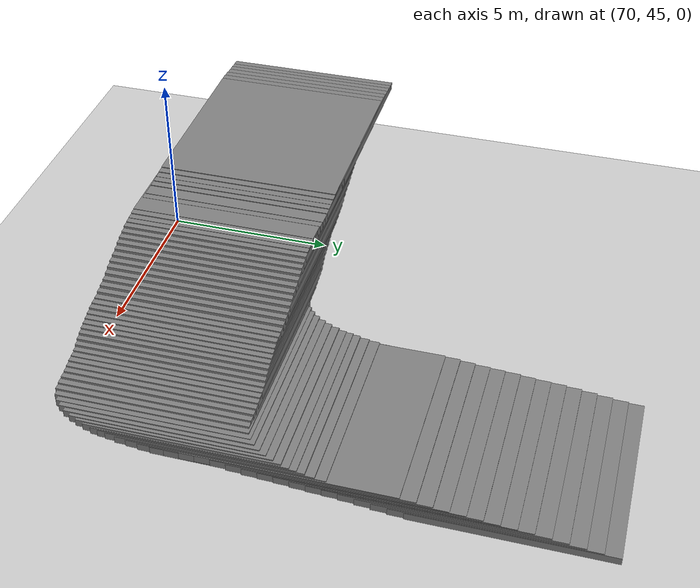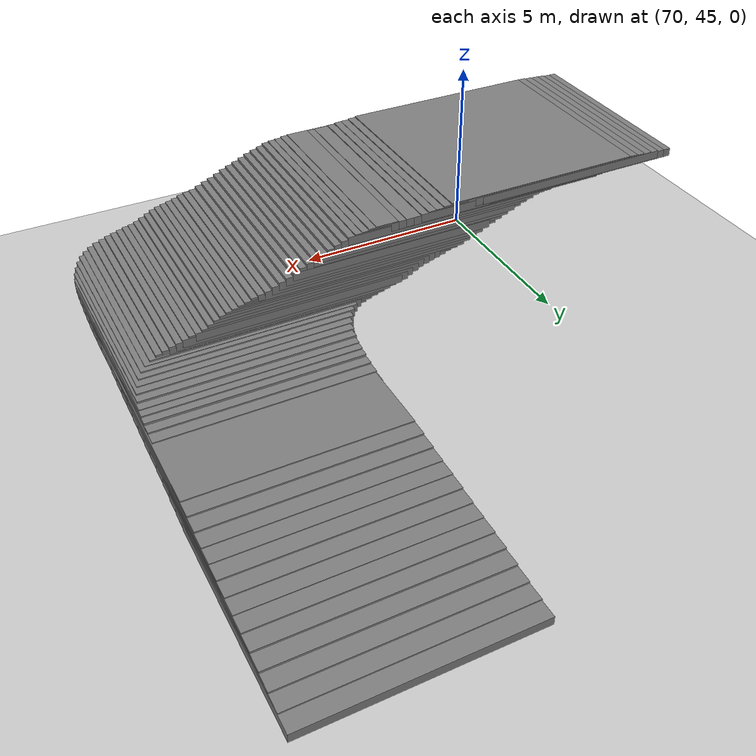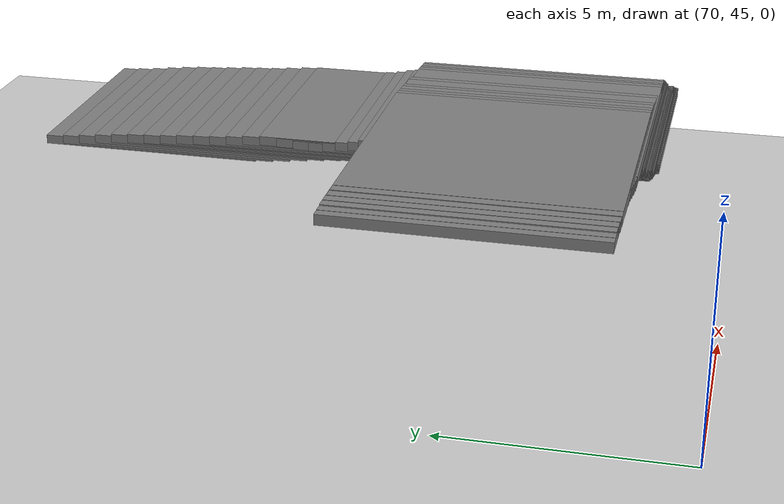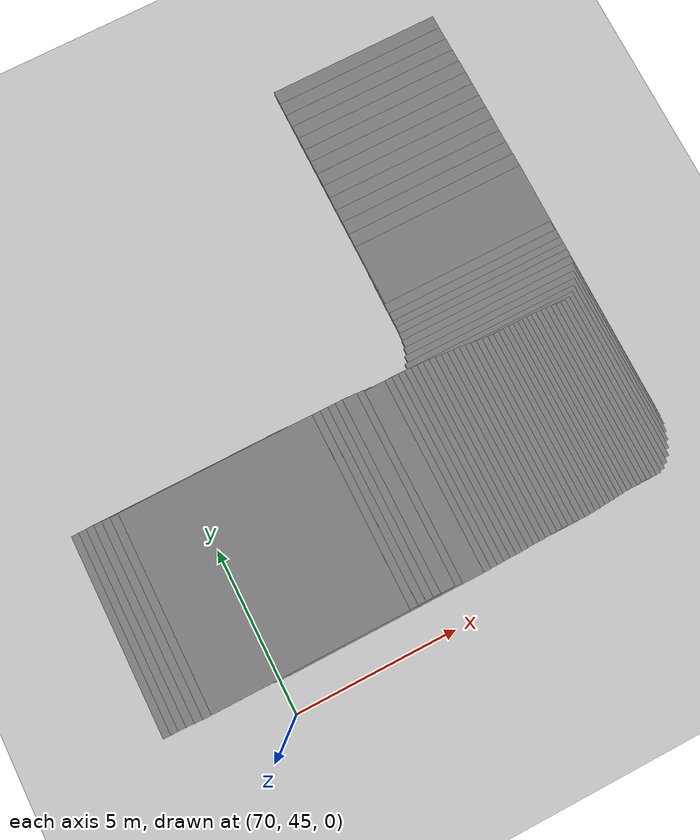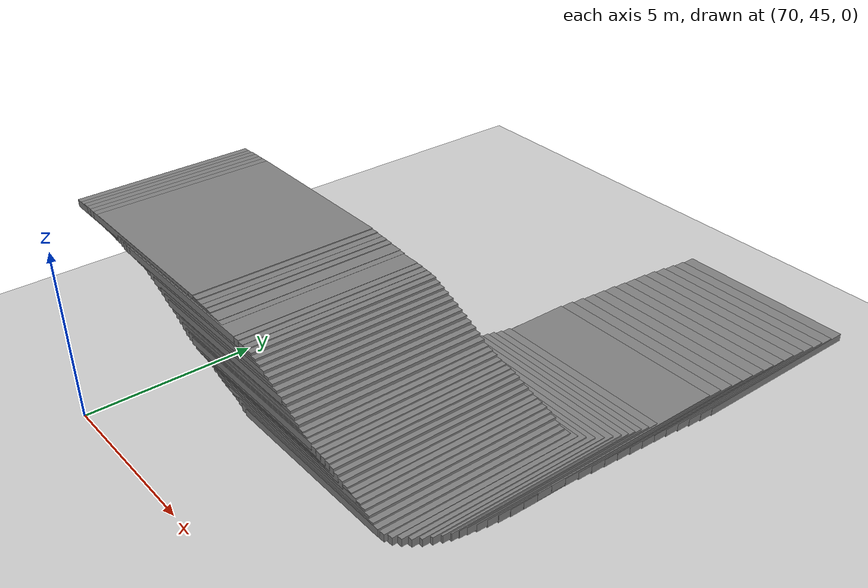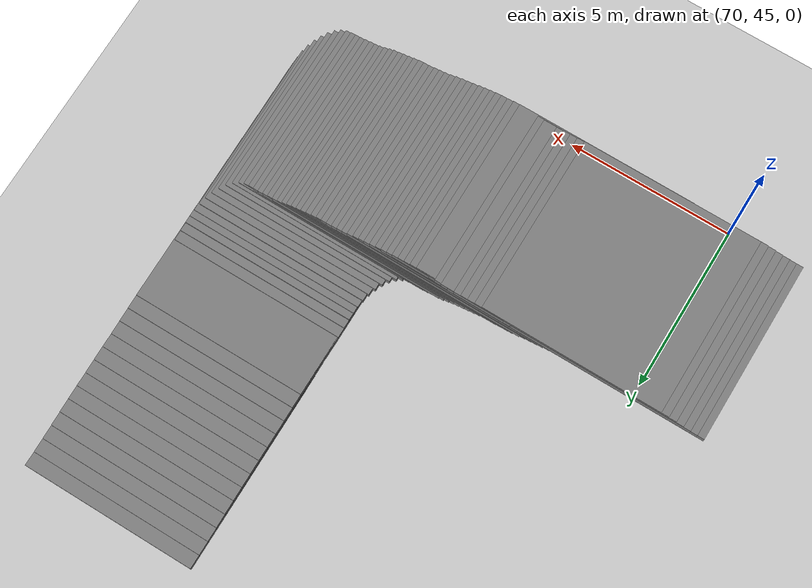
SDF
<sdf version="1.6">
 <world name="default">
  <include><uri>model://sun</uri></include>
  <include><uri>model://ground_plane</uri></include>
  <model name="road_segment_242">
   <static>true</static>
   <link name="link">
    <visual name="visual">
     <geometry><box><size>5.0 5.0 0.2</size></box></geometry>
     <material><ambient>0.5 0.5 0.5 1</ambient><diffuse>0.5 0.5 0.5 1</diffuse></material>
     <pose>79.74093561875881 58.00849881506661 2.318657547667571 0 0 0</pose>
    </visual>
    <collision name="collision">
     <geometry><box><size>5.0 5.0 0.2</size></box></geometry>
     <pose>79.74093561875881 58.00849881506661 2.318657547667571 0 0 0</pose>
    </collision>
   </link>
  </model>
  <model name="road_segment_243">
   <static>true</static>
   <link name="link">
    <visual name="visual">
     <geometry><box><size>5.0 5.0 0.2</size></box></geometry>
     <material><ambient>0.5 0.5 0.5 1</ambient><diffuse>0.5 0.5 0.5 1</diffuse></material>
     <pose>79.7358807040093 57.61032115714689 2.348357556709728 0 0 0</pose>
    </visual>
    <collision name="collision">
     <geometry><box><size>5.0 5.0 0.2</size></box></geometry>
     <pose>79.7358807040093 57.61032115714689 2.348357556709728 0 0 0</pose>
    </collision>
   </link>
  </model>
  <model name="road_segment_244">
   <static>true</static>
   <link name="link">
    <visual name="visual">
     <geometry><box><size>5.0 5.0 0.2</size></box></geometry>
     <material><ambient>0.5 0.5 0.5 1</ambient><diffuse>0.5 0.5 0.5 1</diffuse></material>
     <pose>79.73231928679421 57.213982185175695 2.387387879733346 0 0 0</pose>
    </visual>
    <collision name="collision">
     <geometry><box><size>5.0 5.0 0.2</size></box></geometry>
     <pose>79.73231928679421 57.213982185175695 2.387387879733346 0 0 0</pose>
    </collision>
   </link>
  </model>
  <model name="road_segment_245">
   <static>true</static>
   <link name="link">
    <visual name="visual">
     <geometry><box><size>5.0 5.0 0.2</size></box></geometry>
     <material><ambient>0.5 0.5 0.5 1</ambient><diffuse>0.5 0.5 0.5 1</diffuse></material>
     <pose>79.73048113596877 56.81968619759458 2.4352715677809056 0 0 0</pose>
    </visual>
    <collision name="collision">
     <geometry><box><size>5.0 5.0 0.2</size></box></geometry>
     <pose>79.73048113596877 56.81968619759458 2.4352715677809056 0 0 0</pose>
    </collision>
   </link>
  </model>
  <model name="road_segment_246">
   <static>true</static>
   <link name="link">
    <visual name="visual">
     <geometry><box><size>5.0 5.0 0.2</size></box></geometry>
     <material><ambient>0.5 0.5 0.5 1</ambient><diffuse>0.5 0.5 0.5 1</diffuse></material>
     <pose>79.72829833186869 56.42620740377238 2.479826549562449 0 0 0</pose>
    </visual>
    <collision name="collision">
     <geometry><box><size>5.0 5.0 0.2</size></box></geometry>
     <pose>79.72829833186869 56.42620740377238 2.479826549562449 0 0 0</pose>
    </collision>
   </link>
  </model>
  <model name="road_segment_247">
   <static>true</static>
   <link name="link">
    <visual name="visual">
     <geometry><box><size>5.0 5.0 0.2</size></box></geometry>
     <material><ambient>0.5 0.5 0.5 1</ambient><diffuse>0.5 0.5 0.5 1</diffuse></material>
     <pose>79.72611552776858 56.03334150526757 2.513163294405687 0 0 0</pose>
    </visual>
    <collision name="collision">
     <geometry><box><size>5.0 5.0 0.2</size></box></geometry>
     <pose>79.72611552776858 56.03334150526757 2.513163294405687 0 0 0</pose>
    </collision>
   </link>
  </model>
  <model name="road_segment_248">
   <static>true</static>
   <link name="link">
    <visual name="visual">
     <geometry><box><size>5.0 5.0 0.2</size></box></geometry>
     <material><ambient>0.5 0.5 0.5 1</ambient><diffuse>0.5 0.5 0.5 1</diffuse></material>
     <pose>79.72450714579838 55.64088420364223 2.5327877567202606 0 0 0</pose>
    </visual>
    <collision name="collision">
     <geometry><box><size>5.0 5.0 0.2</size></box></geometry>
     <pose>79.72450714579838 55.64088420364223 2.5327877567202606 0 0 0</pose>
    </collision>
   </link>
  </model>
  <model name="road_segment_249">
   <static>true</static>
   <link name="link">
    <visual name="visual">
     <geometry><box><size>5.0 5.0 0.2</size></box></geometry>
     <material><ambient>0.5 0.5 0.5 1</ambient><diffuse>0.5 0.5 0.5 1</diffuse></material>
     <pose>79.72209457284306 55.24801830513742 2.5610171731434015 0 0 0</pose>
    </visual>
    <collision name="collision">
     <geometry><box><size>5.0 5.0 0.2</size></box></geometry>
     <pose>79.72209457284306 55.24801830513742 2.5610171731434015 0 0 0</pose>
    </collision>
   </link>
  </model>
  <model name="road_segment_250">
   <static>true</static>
   <link name="link">
    <visual name="visual">
     <geometry><box><size>5.0 5.0 0.2</size></box></geometry>
     <material><ambient>0.5 0.5 0.5 1</ambient><diffuse>0.5 0.5 0.5 1</diffuse></material>
     <pose>79.71761408022343 54.85535670507416 2.595715209802891 0 0 0</pose>
    </visual>
    <collision name="collision">
     <geometry><box><size>5.0 5.0 0.2</size></box></geometry>
     <pose>79.71761408022343 54.85535670507416 2.595715209802891 0 0 0</pose>
    </collision>
   </link>
  </model>
  <model name="road_segment_251">
   <static>true</static>
   <link name="link">
    <visual name="visual">
     <geometry><box><size>5.0 5.0 0.2</size></box></geometry>
     <material><ambient>0.5 0.5 0.5 1</ambient><diffuse>0.5 0.5 0.5 1</diffuse></material>
     <pose>79.71324847202322 54.461265015934586 2.616681091060486 0 0 0</pose>
    </visual>
    <collision name="collision">
     <geometry><box><size>5.0 5.0 0.2</size></box></geometry>
     <pose>79.71324847202322 54.461265015934586 2.616681091060486 0 0 0</pose>
    </collision>
   </link>
  </model>
  <model name="road_segment_252">
   <static>true</static>
   <link name="link">
    <visual name="visual">
     <geometry><box><size>5.0 5.0 0.2</size></box></geometry>
     <material><ambient>0.5 0.5 0.5 1</ambient><diffuse>0.5 0.5 0.5 1</diffuse></material>
     <pose>79.71014659251858 54.0686034158677 2.639276547922937 0 0 0</pose>
    </visual>
    <collision name="collision">
     <geometry><box><size>5.0 5.0 0.2</size></box></geometry>
     <pose>79.71014659251858 54.0686034158677 2.639276547922937 0 0 0</pose>
    </collision>
   </link>
  </model>
  <model name="road_segment_253">
   <static>true</static>
   <link name="link">
    <visual name="visual">
     <geometry><box><size>5.0 5.0 0.2</size></box></geometry>
     <material><ambient>0.5 0.5 0.5 1</ambient><diffuse>0.5 0.5 0.5 1</diffuse></material>
     <pose>79.70647029088406 53.68023208302612 2.67635932937002 0 0 0</pose>
    </visual>
    <collision name="collision">
     <geometry><box><size>5.0 5.0 0.2</size></box></geometry>
     <pose>79.70647029088406 53.68023208302612 2.67635932937002 0 0 0</pose>
    </collision>
   </link>
  </model>
  <model name="road_segment_254">
   <static>true</static>
   <link name="link">
    <visual name="visual">
     <geometry><box><size>5.0 5.0 0.2</size></box></geometry>
     <material><ambient>0.5 0.5 0.5 1</ambient><diffuse>0.5 0.5 0.5 1</diffuse></material>
     <pose>79.70290887366897 53.28940916891501 2.71653234260436 0 0 0</pose>
    </visual>
    <collision name="collision">
     <geometry><box><size>5.0 5.0 0.2</size></box></geometry>
     <pose>79.70290887366897 53.28940916891501 2.71653234260436 0 0 0</pose>
    </collision>
   </link>
  </model>
  <model name="road_segment_255">
   <static>true</static>
   <link name="link">
    <visual name="visual">
     <geometry><box><size>5.0 5.0 0.2</size></box></geometry>
     <material><ambient>0.5 0.5 0.5 1</ambient><diffuse>0.5 0.5 0.5 1</diffuse></material>
     <pose>79.70049630071367 52.895113181337514 2.743658814563239 0 0 0</pose>
    </visual>
    <collision name="collision">
     <geometry><box><size>5.0 5.0 0.2</size></box></geometry>
     <pose>79.70049630071367 52.895113181337514 2.743658814563239 0 0 0</pose>
    </collision>
   </link>
  </model>
  <model name="road_segment_256">
   <static>true</static>
   <link name="link">
    <visual name="visual">
     <geometry><box><size>5.0 5.0 0.2</size></box></geometry>
     <material><ambient>0.5 0.5 0.5 1</ambient><diffuse>0.5 0.5 0.5 1</diffuse></material>
     <pose>79.697394421209 52.50286017815009 2.7332354925541313 0 0 0</pose>
    </visual>
    <collision name="collision">
     <geometry><box><size>5.0 5.0 0.2</size></box></geometry>
     <pose>79.697394421209 52.50286017815009 2.7332354925541313 0 0 0</pose>
    </collision>
   </link>
  </model>
  <model name="road_segment_257">
   <static>true</static>
   <link name="link">
    <visual name="visual">
     <geometry><box><size>5.0 5.0 0.2</size></box></geometry>
     <material><ambient>0.5 0.5 0.5 1</ambient><diffuse>0.5 0.5 0.5 1</diffuse></material>
     <pose>79.6917650843296 52.120004903164975 2.7108785101704393 0 0 0</pose>
    </visual>
    <collision name="collision">
     <geometry><box><size>5.0 5.0 0.2</size></box></geometry>
     <pose>79.6917650843296 52.120004903164975 2.7108785101704393 0 0 0</pose>
    </collision>
   </link>
  </model>
  <model name="road_segment_258">
   <static>true</static>
   <link name="link">
    <visual name="visual">
     <geometry><box><size>5.0 5.0 0.2</size></box></geometry>
     <material><ambient>0.5 0.5 0.5 1</ambient><diffuse>0.5 0.5 0.5 1</diffuse></material>
     <pose>79.68498690317409 51.76248263463414 2.707241774369359 0 0 0</pose>
    </visual>
    <collision name="collision">
     <geometry><box><size>5.0 5.0 0.2</size></box></geometry>
     <pose>79.68498690317409 51.76248263463414 2.707241774369359 0 0 0</pose>
    </collision>
   </link>
  </model>
  <model name="road_segment_259">
   <static>true</static>
   <link name="link">
    <visual name="visual">
     <geometry><box><size>5.0 5.0 0.2</size></box></geometry>
     <material><ambient>0.5 0.5 0.5 1</ambient><diffuse>0.5 0.5 0.5 1</diffuse></material>
     <pose>79.67866825972902 51.441325488274146 2.7294000280207515 0 0 0</pose>
    </visual>
    <collision name="collision">
     <geometry><box><size>5.0 5.0 0.2</size></box></geometry>
     <pose>79.67866825972902 51.441325488274146 2.7294000280207515 0 0 0</pose>
    </collision>
   </link>
  </model>
  <model name="road_segment_260">
   <static>true</static>
   <link name="link">
    <visual name="visual">
     <geometry><box><size>5.0 5.0 0.2</size></box></geometry>
     <material><ambient>0.5 0.5 0.5 1</ambient><diffuse>0.5 0.5 0.5 1</diffuse></material>
     <pose>79.6746473048035 51.143866960857835 2.769602850564936 0 0 0</pose>
    </visual>
    <collision name="collision">
     <geometry><box><size>5.0 5.0 0.2</size></box></geometry>
     <pose>79.6746473048035 51.143866960857835 2.769602850564936 0 0 0</pose>
    </collision>
   </link>
  </model>
  <model name="road_segment_261">
   <static>true</static>
   <link name="link">
    <visual name="visual">
     <geometry><box><size>5.0 5.0 0.2</size></box></geometry>
     <material><ambient>0.5 0.5 0.5 1</ambient><diffuse>0.5 0.5 0.5 1</diffuse></material>
     <pose>79.67234961626764 50.86499959140458 2.8075401655609067 0 0 0</pose>
    </visual>
    <collision name="collision">
     <geometry><box><size>5.0 5.0 0.2</size></box></geometry>
     <pose>79.67234961626764 50.86499959140458 2.8075401655609067 0 0 0</pose>
    </collision>
   </link>
  </model>
  <model name="road_segment_262">
   <static>true</static>
   <link name="link">
    <visual name="visual">
     <geometry><box><size>5.0 5.0 0.2</size></box></geometry>
     <material><ambient>0.5 0.5 0.5 1</ambient><diffuse>0.5 0.5 0.5 1</diffuse></material>
     <pose>79.66821377692267 50.62433603007432 2.863343193590601 0 0 0</pose>
    </visual>
    <collision name="collision">
     <geometry><box><size>5.0 5.0 0.2</size></box></geometry>
     <pose>79.66821377692267 50.62433603007432 2.863343193590601 0 0 0</pose>
    </collision>
   </link>
  </model>
  <model name="road_segment_263">
   <static>true</static>
   <link name="link">
    <visual name="visual">
     <geometry><box><size>5.0 5.0 0.2</size></box></geometry>
     <material><ambient>0.5 0.5 0.5 1</ambient><diffuse>0.5 0.5 0.5 1</diffuse></material>
     <pose>79.66074628921783 50.426166544088716 2.89448398594193 0 0 0</pose>
    </visual>
    <collision name="collision">
     <geometry><box><size>5.0 5.0 0.2</size></box></geometry>
     <pose>79.66074628921783 50.426166544088716 2.89448398594193 0 0 0</pose>
    </collision>
   </link>
  </model>
  <model name="road_segment_264">
   <static>true</static>
   <link name="link">
    <visual name="visual">
     <geometry><box><size>5.0 5.0 0.2</size></box></geometry>
     <material><ambient>0.5 0.5 0.5 1</ambient><diffuse>0.5 0.5 0.5 1</diffuse></material>
     <pose>79.6470750425037 50.23821198006073 2.917675629001279 0 0 0</pose>
    </visual>
    <collision name="collision">
     <geometry><box><size>5.0 5.0 0.2</size></box></geometry>
     <pose>79.6470750425037 50.23821198006073 2.917675629001279 0 0 0</pose>
    </collision>
   </link>
  </model>
  <model name="road_segment_265">
   <static>true</static>
   <link name="link">
    <visual name="visual">
     <geometry><box><size>5.0 5.0 0.2</size></box></geometry>
     <material><ambient>0.5 0.5 0.5 1</ambient><diffuse>0.5 0.5 0.5 1</diffuse></material>
     <pose>79.61915812692922 50.03656942060875 2.9664237870343415 0 0 0</pose>
    </visual>
    <collision name="collision">
     <geometry><box><size>5.0 5.0 0.2</size></box></geometry>
     <pose>79.61915812692922 50.03656942060875 2.9664237870343415 0 0 0</pose>
    </collision>
   </link>
  </model>
  <model name="road_segment_266">
   <static>true</static>
   <link name="link">
    <visual name="visual">
     <geometry><box><size>5.0 5.0 0.2</size></box></geometry>
     <material><ambient>0.5 0.5 0.5 1</ambient><diffuse>0.5 0.5 0.5 1</diffuse></material>
     <pose>79.56711548181794 49.83084089237663 3.001062205074141 0 0 0</pose>
    </visual>
    <collision name="collision">
     <geometry><box><size>5.0 5.0 0.2</size></box></geometry>
     <pose>79.56711548181794 49.83084089237663 3.001062205074141 0 0 0</pose>
    </collision>
   </link>
  </model>
  <model name="road_segment_267">
   <static>true</static>
   <link name="link">
    <visual name="visual">
     <geometry><box><size>5.0 5.0 0.2</size></box></geometry>
     <material><ambient>0.5 0.5 0.5 1</ambient><diffuse>0.5 0.5 0.5 1</diffuse></material>
     <pose>79.49221083588169 49.632671406391026 3.0229223656270836 0 0 0</pose>
    </visual>
    <collision name="collision">
     <geometry><box><size>5.0 5.0 0.2</size></box></geometry>
     <pose>79.49221083588169 49.632671406391026 3.0229223656270836 0 0 0</pose>
    </collision>
   </link>
  </model>
  <model name="road_segment_268">
   <static>true</static>
   <link name="link">
    <visual name="visual">
     <geometry><box><size>5.0 5.0 0.2</size></box></geometry>
     <material><ambient>0.5 0.5 0.5 1</ambient><diffuse>0.5 0.5 0.5 1</diffuse></material>
     <pose>79.40007352601623 49.447168423632576 3.052155362148337 0 0 0</pose>
    </visual>
    <collision name="collision">
     <geometry><box><size>5.0 5.0 0.2</size></box></geometry>
     <pose>79.40007352601623 49.447168423632576 3.052155362148337 0 0 0</pose>
    </collision>
   </link>
  </model>
  <model name="road_segment_269">
   <static>true</static>
   <link name="link">
    <visual name="visual">
     <geometry><box><size>5.0 5.0 0.2</size></box></geometry>
     <material><ambient>0.5 0.5 0.5 1</ambient><diffuse>0.5 0.5 0.5 1</diffuse></material>
     <pose>79.28943982352601 49.28229958323089 3.085720645033719 0 0 0</pose>
    </visual>
    <collision name="collision">
     <geometry><box><size>5.0 5.0 0.2</size></box></geometry>
     <pose>79.28943982352601 49.28229958323089 3.085720645033719 0 0 0</pose>
    </collision>
   </link>
  </model>
  <model name="road_segment_270">
   <static>true</static>
   <link name="link">
    <visual name="visual">
     <geometry><box><size>5.0 5.0 0.2</size></box></geometry>
     <material><ambient>0.5 0.5 0.5 1</ambient><diffuse>0.5 0.5 0.5 1</diffuse></material>
     <pose>79.16088415054092 49.14991419465418 3.101509642814913 0 0 0</pose>
    </visual>
    <collision name="collision">
     <geometry><box><size>5.0 5.0 0.2</size></box></geometry>
     <pose>79.16088415054092 49.14991419465418 3.101509642814913 0 0 0</pose>
    </collision>
   </link>
  </model>
  <model name="road_segment_271">
   <static>true</static>
   <link name="link">
    <visual name="visual">
     <geometry><box><size>5.0 5.0 0.2</size></box></geometry>
     <material><ambient>0.5 0.5 0.5 1</ambient><diffuse>0.5 0.5 0.5 1</diffuse></material>
     <pose>79.02003584394036 49.060022881425766 3.1392681019518145 0 0 0</pose>
    </visual>
    <collision name="collision">
     <geometry><box><size>5.0 5.0 0.2</size></box></geometry>
     <pose>79.02003584394036 49.060022881425766 3.1392681019518145 0 0 0</pose>
    </collision>
   </link>
  </model>
  <model name="road_segment_272">
   <static>true</static>
   <link name="link">
    <visual name="visual">
     <geometry><box><size>5.0 5.0 0.2</size></box></geometry>
     <material><ambient>0.5 0.5 0.5 1</ambient><diffuse>0.5 0.5 0.5 1</diffuse></material>
     <pose>78.87194981847387 49.01895889515379 3.193242825644353 0 0 0</pose>
    </visual>
    <collision name="collision">
     <geometry><box><size>5.0 5.0 0.2</size></box></geometry>
     <pose>78.87194981847387 49.01895889515379 3.193242825644353 0 0 0</pose>
    </collision>
   </link>
  </model>
  <model name="road_segment_273">
   <static>true</static>
   <link name="link">
    <visual name="visual">
     <geometry><box><size>5.0 5.0 0.2</size></box></geometry>
     <material><ambient>0.5 0.5 0.5 1</ambient><diffuse>0.5 0.5 0.5 1</diffuse></material>
     <pose>78.71926841596827 49.01977608890908 3.244435347084699 0 0 0</pose>
    </visual>
    <collision name="collision">
     <geometry><box><size>5.0 5.0 0.2</size></box></geometry>
     <pose>78.71926841596827 49.01977608890908 3.244435347084699 0 0 0</pose>
    </collision>
   </link>
  </model>
  <model name="road_segment_274">
   <static>true</static>
   <link name="link">
    <visual name="visual">
     <geometry><box><size>5.0 5.0 0.2</size></box></geometry>
     <material><ambient>0.5 0.5 0.5 1</ambient><diffuse>0.5 0.5 0.5 1</diffuse></material>
     <pose>78.56428932494313 49.03693715779947 3.3102642396589017 0 0 0</pose>
    </visual>
    <collision name="collision">
     <geometry><box><size>5.0 5.0 0.2</size></box></geometry>
     <pose>78.56428932494313 49.03693715779947 3.3102642396589017 0 0 0</pose>
    </collision>
   </link>
  </model>
  <model name="road_segment_275">
   <static>true</static>
   <link name="link">
    <visual name="visual">
     <geometry><box><size>5.0 5.0 0.2</size></box></geometry>
     <material><ambient>0.5 0.5 0.5 1</ambient><diffuse>0.5 0.5 0.5 1</diffuse></material>
     <pose>78.41229722898689 49.049399362588694 3.36259945130997 0 0 0</pose>
    </visual>
    <collision name="collision">
     <geometry><box><size>5.0 5.0 0.2</size></box></geometry>
     <pose>78.41229722898689 49.049399362588694 3.36259945130997 0 0 0</pose>
    </collision>
   </link>
  </model>
  <model name="road_segment_276">
   <static>true</static>
   <link name="link">
    <visual name="visual">
     <geometry><box><size>5.0 5.0 0.2</size></box></geometry>
     <material><ambient>0.5 0.5 0.5 1</ambient><diffuse>0.5 0.5 0.5 1</diffuse></material>
     <pose>78.26191351500086 49.04960366102661 3.4070153229789044 0 0 0</pose>
    </visual>
    <collision name="collision">
     <geometry><box><size>5.0 5.0 0.2</size></box></geometry>
     <pose>78.26191351500086 49.04960366102661 3.4070153229789044 0 0 0</pose>
    </collision>
   </link>
  </model>
  <model name="road_segment_277">
   <static>true</static>
   <link name="link">
    <visual name="visual">
     <geometry><box><size>5.0 5.0 0.2</size></box></geometry>
     <material><ambient>0.5 0.5 0.5 1</ambient><diffuse>0.5 0.5 0.5 1</diffuse></material>
     <pose>78.11061072561026 49.04796927351238 3.4507455805214047 0 0 0</pose>
    </visual>
    <collision name="collision">
     <geometry><box><size>5.0 5.0 0.2</size></box></geometry>
     <pose>78.11061072561026 49.04796927351238 3.4507455805214047 0 0 0</pose>
    </collision>
   </link>
  </model>
  <model name="road_segment_278">
   <static>true</static>
   <link name="link">
    <visual name="visual">
     <geometry><box><size>5.0 5.0 0.2</size></box></geometry>
     <material><ambient>0.5 0.5 0.5 1</ambient><diffuse>0.5 0.5 0.5 1</diffuse></material>
     <pose>77.95965258949433 49.05164664542031 3.480415780253717 0 0 0</pose>
    </visual>
    <collision name="collision">
     <geometry><box><size>5.0 5.0 0.2</size></box></geometry>
     <pose>77.95965258949433 49.05164664542031 3.480415780253717 0 0 0</pose>
    </collision>
   </link>
  </model>
  <model name="road_segment_279">
   <static>true</static>
   <link name="link">
    <visual name="visual">
     <geometry><box><size>5.0 5.0 0.2</size></box></geometry>
     <material><ambient>0.5 0.5 0.5 1</ambient><diffuse>0.5 0.5 0.5 1</diffuse></material>
     <pose>77.81156656402783 49.04858216883339 3.527991438766213 0 0 0</pose>
    </visual>
    <collision name="collision">
     <geometry><box><size>5.0 5.0 0.2</size></box></geometry>
     <pose>77.81156656402783 49.04858216883339 3.527991438766213 0 0 0</pose>
    </collision>
   </link>
  </model>
  <model name="road_segment_280">
   <static>true</static>
   <link name="link">
    <visual name="visual">
     <geometry><box><size>5.0 5.0 0.2</size></box></geometry>
     <material><ambient>0.5 0.5 0.5 1</ambient><diffuse>0.5 0.5 0.5 1</diffuse></material>
     <pose>77.66727172463163 49.03775435155477 3.593671284791191 0 0 0</pose>
    </visual>
    <collision name="collision">
     <geometry><box><size>5.0 5.0 0.2</size></box></geometry>
     <pose>77.66727172463163 49.03775435155477 3.593671284791191 0 0 0</pose>
    </collision>
   </link>
  </model>
  <model name="road_segment_281">
   <static>true</static>
   <link name="link">
    <visual name="visual">
     <geometry><box><size>5.0 5.0 0.2</size></box></geometry>
     <material><ambient>0.5 0.5 0.5 1</ambient><diffuse>0.5 0.5 0.5 1</diffuse></material>
     <pose>77.52355130738164 49.03101250306355 3.663514497757843 0 0 0</pose>
    </visual>
    <collision name="collision">
     <geometry><box><size>5.0 5.0 0.2</size></box></geometry>
     <pose>77.52355130738164 49.03101250306355 3.663514497757843 0 0 0</pose>
    </collision>
   </link>
  </model>
  <model name="road_segment_282">
   <static>true</static>
   <link name="link">
    <visual name="visual">
     <geometry><box><size>5.0 5.0 0.2</size></box></geometry>
     <material><ambient>0.5 0.5 0.5 1</ambient><diffuse>0.5 0.5 0.5 1</diffuse></material>
     <pose>77.38029042782576 49.02856092179401 3.7335067572737204 0 0 0</pose>
    </visual>
    <collision name="collision">
     <geometry><box><size>5.0 5.0 0.2</size></box></geometry>
     <pose>77.38029042782576 49.02856092179401 3.7335067572737204 0 0 0</pose>
    </collision>
   </link>
  </model>
  <model name="road_segment_283">
   <static>true</static>
   <link name="link">
    <visual name="visual">
     <geometry><box><size>5.0 5.0 0.2</size></box></geometry>
     <material><ambient>0.5 0.5 0.5 1</ambient><diffuse>0.5 0.5 0.5 1</diffuse></material>
     <pose>77.23737420154455 49.025905042082925 3.780992987856681 0 0 0</pose>
    </visual>
    <collision name="collision">
     <geometry><box><size>5.0 5.0 0.2</size></box></geometry>
     <pose>77.23737420154455 49.025905042082925 3.780992987856681 0 0 0</pose>
    </collision>
   </link>
  </model>
  <model name="road_segment_284">
   <static>true</static>
   <link name="link">
    <visual name="visual">
     <geometry><box><size>5.0 5.0 0.2</size></box></geometry>
     <material><ambient>0.5 0.5 0.5 1</ambient><diffuse>0.5 0.5 0.5 1</diffuse></material>
     <pose>77.0913560957587 49.019980387347005 3.8170125705859617 0 0 0</pose>
    </visual>
    <collision name="collision">
     <geometry><box><size>5.0 5.0 0.2</size></box></geometry>
     <pose>77.0913560957587 49.019980387347005 3.8170125705859617 0 0 0</pose>
    </collision>
   </link>
  </model>
  <model name="road_segment_285">
   <static>true</static>
   <link name="link">
    <visual name="visual">
     <geometry><box><size>5.0 5.0 0.2</size></box></geometry>
     <material><ambient>0.5 0.5 0.5 1</ambient><diffuse>0.5 0.5 0.5 1</diffuse></material>
     <pose>76.94154680390253 49.011604151341544 3.8518695902312903 0 0 0</pose>
    </visual>
    <collision name="collision">
     <geometry><box><size>5.0 5.0 0.2</size></box></geometry>
     <pose>76.94154680390253 49.011604151341544 3.8518695902312903 0 0 0</pose>
    </collision>
   </link>
  </model>
  <model name="road_segment_286">
   <static>true</static>
   <link name="link">
    <visual name="visual">
     <geometry><box><size>5.0 5.0 0.2</size></box></geometry>
     <material><ambient>0.5 0.5 0.5 1</ambient><diffuse>0.5 0.5 0.5 1</diffuse></material>
     <pose>76.78852074812228 49.00384081065347 3.88820713893225 0 0 0</pose>
    </visual>
    <collision name="collision">
     <geometry><box><size>5.0 5.0 0.2</size></box></geometry>
     <pose>76.78852074812228 49.00384081065347 3.88820713893225 0 0 0</pose>
    </collision>
   </link>
  </model>
  <model name="road_segment_287">
   <static>true</static>
   <link name="link">
    <visual name="visual">
     <geometry><box><size>5.0 5.0 0.2</size></box></geometry>
     <material><ambient>0.5 0.5 0.5 1</ambient><diffuse>0.5 0.5 0.5 1</diffuse></material>
     <pose>76.63296723495094 49.003636512215564 3.946871860707057 0 0 0</pose>
    </visual>
    <collision name="collision">
     <geometry><box><size>5.0 5.0 0.2</size></box></geometry>
     <pose>76.63296723495094 49.003636512215564 3.946871860707057 0 0 0</pose>
    </collision>
   </link>
  </model>
  <model name="road_segment_288">
   <static>true</static>
   <link name="link">
    <visual name="visual">
     <geometry><box><size>5.0 5.0 0.2</size></box></geometry>
     <material><ambient>0.5 0.5 0.5 1</ambient><diffuse>0.5 0.5 0.5 1</diffuse></material>
     <pose>76.47626487751984 49.01160415134518 3.986339386941734 0 0 0</pose>
    </visual>
    <collision name="collision">
     <geometry><box><size>5.0 5.0 0.2</size></box></geometry>
     <pose>76.47626487751984 49.01160415134518 3.986339386941734 0 0 0</pose>
    </collision>
   </link>
  </model>
  <model name="road_segment_289">
   <static>true</static>
   <link name="link">
    <visual name="visual">
     <geometry><box><size>5.0 5.0 0.2</size></box></geometry>
     <material><ambient>0.5 0.5 0.5 1</ambient><diffuse>0.5 0.5 0.5 1</diffuse></material>
     <pose>76.31565644959896 49.01998038735063 4.023859371599876 0 0 0</pose>
    </visual>
    <collision name="collision">
     <geometry><box><size>5.0 5.0 0.2</size></box></geometry>
     <pose>76.31565644959896 49.01998038735063 4.023859371599876 0 0 0</pose>
    </collision>
   </link>
  </model>
  <model name="road_segment_290">
   <static>true</static>
   <link name="link">
    <visual name="visual">
     <geometry><box><size>5.0 5.0 0.2</size></box></geometry>
     <material><ambient>0.5 0.5 0.5 1</ambient><diffuse>0.5 0.5 0.5 1</diffuse></material>
     <pose>76.151486604463 49.02958241399086 4.101920017647112 0 0 0</pose>
    </visual>
    <collision name="collision">
     <geometry><box><size>5.0 5.0 0.2</size></box></geometry>
     <pose>76.151486604463 49.02958241399086 4.101920017647112 0 0 0</pose>
    </collision>
   </link>
  </model>
  <model name="road_segment_291">
   <static>true</static>
   <link name="link">
    <visual name="visual">
     <geometry><box><size>5.0 5.0 0.2</size></box></geometry>
     <material><ambient>0.5 0.5 0.5 1</ambient><diffuse>0.5 0.5 0.5 1</diffuse></material>
     <pose>75.98789118147327 49.04327040941486 4.179980663694348 0 0 0</pose>
    </visual>
    <collision name="collision">
     <geometry><box><size>5.0 5.0 0.2</size></box></geometry>
     <pose>75.98789118147327 49.04327040941486 4.179980663694348 0 0 0</pose>
    </collision>
   </link>
  </model>
  <model name="road_segment_292">
   <static>true</static>
   <link name="link">
    <visual name="visual">
     <geometry><box><size>5.0 5.0 0.2</size></box></geometry>
     <material><ambient>0.5 0.5 0.5 1</ambient><diffuse>0.5 0.5 0.5 1</diffuse></material>
     <pose>75.824065989612 49.054711122007234 4.251284532843401 0 0 0</pose>
    </visual>
    <collision name="collision">
     <geometry><box><size>5.0 5.0 0.2</size></box></geometry>
     <pose>75.824065989612 49.054711122007234 4.251284532843401 0 0 0</pose>
    </collision>
   </link>
  </model>
  <model name="road_segment_293">
   <static>true</static>
   <link name="link">
    <visual name="visual">
     <geometry><box><size>5.0 5.0 0.2</size></box></geometry>
     <material><ambient>0.5 0.5 0.5 1</ambient><diffuse>0.5 0.5 0.5 1</diffuse></material>
     <pose>75.65794310921484 49.05716270327677 4.332147254016059 0 0 0</pose>
    </visual>
    <collision name="collision">
     <geometry><box><size>5.0 5.0 0.2</size></box></geometry>
     <pose>75.65794310921484 49.05716270327677 4.332147254016059 0 0 0</pose>
    </collision>
   </link>
  </model>
  <model name="road_segment_294">
   <static>true</static>
   <link name="link">
    <visual name="visual">
     <geometry><box><size>5.0 5.0 0.2</size></box></geometry>
     <material><ambient>0.5 0.5 0.5 1</ambient><diffuse>0.5 0.5 0.5 1</diffuse></material>
     <pose>75.49124580670414 49.05389392825193 4.410664976147584 0 0 0</pose>
    </visual>
    <collision name="collision">
     <geometry><box><size>5.0 5.0 0.2</size></box></geometry>
     <pose>75.49124580670414 49.05389392825193 4.410664976147584 0 0 0</pose>
    </collision>
   </link>
  </model>
  <model name="road_segment_295">
   <static>true</static>
   <link name="link">
    <visual name="visual">
     <geometry><box><size>5.0 5.0 0.2</size></box></geometry>
     <material><ambient>0.5 0.5 0.5 1</ambient><diffuse>0.5 0.5 0.5 1</diffuse></material>
     <pose>75.32397408206353 49.05491542044878 4.479047532931835 0 0 0</pose>
    </visual>
    <collision name="collision">
     <geometry><box><size>5.0 5.0 0.2</size></box></geometry>
     <pose>75.32397408206353 49.05491542044878 4.479047532931835 0 0 0</pose>
    </collision>
   </link>
  </model>
  <model name="road_segment_296">
   <static>true</static>
   <link name="link">
    <visual name="visual">
     <geometry><box><size>5.0 5.0 0.2</size></box></geometry>
     <material><ambient>0.5 0.5 0.5 1</ambient><diffuse>0.5 0.5 0.5 1</diffuse></material>
     <pose>75.15509397545273 49.06288305957477 4.55337207881184 0 0 0</pose>
    </visual>
    <collision name="collision">
     <geometry><box><size>5.0 5.0 0.2</size></box></geometry>
     <pose>75.15509397545273 49.06288305957477 4.55337207881184 0 0 0</pose>
    </collision>
   </link>
  </model>
  <model name="road_segment_297">
   <static>true</static>
   <link name="link">
    <visual name="visual">
     <geometry><box><size>5.0 5.0 0.2</size></box></geometry>
     <material><ambient>0.5 0.5 0.5 1</ambient><diffuse>0.5 0.5 0.5 1</diffuse></material>
     <pose>74.9871329442465 49.06696902835854 4.625997494030686 0 0 0</pose>
    </visual>
    <collision name="collision">
     <geometry><box><size>5.0 5.0 0.2</size></box></geometry>
     <pose>74.9871329442465 49.06696902835854 4.625997494030686 0 0 0</pose>
    </collision>
   </link>
  </model>
  <model name="road_segment_298">
   <static>true</static>
   <link name="link">
    <visual name="visual">
     <geometry><box><size>5.0 5.0 0.2</size></box></geometry>
     <material><ambient>0.5 0.5 0.5 1</ambient><diffuse>0.5 0.5 0.5 1</diffuse></material>
     <pose>74.81986121960588 49.06594753616169 4.699805345206713 0 0 0</pose>
    </visual>
    <collision name="collision">
     <geometry><box><size>5.0 5.0 0.2</size></box></geometry>
     <pose>74.81986121960588 49.06594753616169 4.699805345206713 0 0 0</pose>
    </collision>
   </link>
  </model>
  <model name="road_segment_299">
   <static>true</static>
   <link name="link">
    <visual name="visual">
     <geometry><box><size>5.0 5.0 0.2</size></box></geometry>
     <material><ambient>0.5 0.5 0.5 1</ambient><diffuse>0.5 0.5 0.5 1</diffuse></material>
     <pose>74.65419787693551 49.06778622211384 4.762295595078284 0 0 0</pose>
    </visual>
    <collision name="collision">
     <geometry><box><size>5.0 5.0 0.2</size></box></geometry>
     <pose>74.65419787693551 49.06778622211384 4.762295595078284 0 0 0</pose>
    </collision>
   </link>
  </model>
  <model name="road_segment_300">
   <static>true</static>
   <link name="link">
    <visual name="visual">
     <geometry><box><size>5.0 5.0 0.2</size></box></geometry>
     <material><ambient>0.5 0.5 0.5 1</ambient><diffuse>0.5 0.5 0.5 1</diffuse></material>
     <pose>74.4888791875398 49.073506578411845 4.82100006259955 0 0 0</pose>
    </visual>
    <collision name="collision">
     <geometry><box><size>5.0 5.0 0.2</size></box></geometry>
     <pose>74.4888791875398 49.073506578411845 4.82100006259955 0 0 0</pose>
    </collision>
   </link>
  </model>
  <model name="road_segment_301">
   <static>true</static>
   <link name="link">
    <visual name="visual">
     <geometry><box><size>5.0 5.0 0.2</size></box></geometry>
     <material><ambient>0.5 0.5 0.5 1</ambient><diffuse>0.5 0.5 0.5 1</diffuse></material>
     <pose>74.32183723175442 49.076571054998766 4.884513765442464 0 0 0</pose>
    </visual>
    <collision name="collision">
     <geometry><box><size>5.0 5.0 0.2</size></box></geometry>
     <pose>74.32183723175442 49.076571054998766 4.884513765442464 0 0 0</pose>
    </collision>
   </link>
  </model>
  <model name="road_segment_302">
   <static>true</static>
   <link name="link">
    <visual name="visual">
     <geometry><box><size>5.0 5.0 0.2</size></box></geometry>
     <material><ambient>0.5 0.5 0.5 1</ambient><diffuse>0.5 0.5 0.5 1</diffuse></material>
     <pose>74.15364643169293 49.07595815968138 4.910457801444162 0 0 0</pose>
    </visual>
    <collision name="collision">
     <geometry><box><size>5.0 5.0 0.2</size></box></geometry>
     <pose>74.15364643169293 49.07595815968138 4.910457801444162 0 0 0</pose>
    </collision>
   </link>
  </model>
  <model name="road_segment_303">
   <static>true</static>
   <link name="link">
    <visual name="visual">
     <geometry><box><size>5.0 5.0 0.2</size></box></geometry>
     <material><ambient>0.5 0.5 0.5 1</ambient><diffuse>0.5 0.5 0.5 1</diffuse></material>
     <pose>73.9825835209657 49.07330227997029 4.922272224579366 0 0 0</pose>
    </visual>
    <collision name="collision">
     <geometry><box><size>5.0 5.0 0.2</size></box></geometry>
     <pose>73.9825835209657 49.07330227997029 4.922272224579366 0 0 0</pose>
    </collision>
   </link>
  </model>
  <model name="road_segment_304">
   <static>true</static>
   <link name="link">
    <visual name="visual">
     <geometry><box><size>5.0 5.0 0.2</size></box></geometry>
     <material><ambient>0.5 0.5 0.5 1</ambient><diffuse>0.5 0.5 0.5 1</diffuse></material>
     <pose>73.80818896189494 49.06799052055176 4.949358950791785 0 0 0</pose>
    </visual>
    <collision name="collision">
     <geometry><box><size>5.0 5.0 0.2</size></box></geometry>
     <pose>73.80818896189494 49.06799052055176 4.949358950791785 0 0 0</pose>
    </collision>
   </link>
  </model>
  <model name="road_segment_305">
   <static>true</static>
   <link name="link">
    <visual name="visual">
     <geometry><box><size>5.0 5.0 0.2</size></box></geometry>
     <material><ambient>0.5 0.5 0.5 1</ambient><diffuse>0.5 0.5 0.5 1</diffuse></material>
     <pose>73.62736087495966 49.06553893928222 4.962425364940476 0 0 0</pose>
    </visual>
    <collision name="collision">
     <geometry><box><size>5.0 5.0 0.2</size></box></geometry>
     <pose>73.62736087495966 49.06553893928222 4.962425364940476 0 0 0</pose>
    </collision>
   </link>
  </model>
  <model name="road_segment_306">
   <static>true</static>
   <link name="link">
    <visual name="visual">
     <geometry><box><size>5.0 5.0 0.2</size></box></geometry>
     <material><ambient>0.5 0.5 0.5 1</ambient><diffuse>0.5 0.5 0.5 1</diffuse></material>
     <pose>73.44343090850342 49.07023780338338 4.955956744704128 0 0 0</pose>
    </visual>
    <collision name="collision">
     <geometry><box><size>5.0 5.0 0.2</size></box></geometry>
     <pose>73.44343090850342 49.07023780338338 4.955956744704128 0 0 0</pose>
    </collision>
   </link>
  </model>
  <model name="road_segment_307">
   <static>true</static>
   <link name="link">
    <visual name="visual">
     <geometry><box><size>5.0 5.0 0.2</size></box></geometry>
     <material><ambient>0.5 0.5 0.5 1</ambient><diffuse>0.5 0.5 0.5 1</diffuse></material>
     <pose>73.26110932401737 49.08249570973469 4.949994882735144 0 0 0</pose>
    </visual>
    <collision name="collision">
     <geometry><box><size>5.0 5.0 0.2</size></box></geometry>
     <pose>73.26110932401737 49.08249570973469 4.949994882735144 0 0 0</pose>
    </collision>
   </link>
  </model>
  <model name="road_segment_308">
   <static>true</static>
   <link name="link">
    <visual name="visual">
     <geometry><box><size>5.0 5.0 0.2</size></box></geometry>
     <material><ambient>0.5 0.5 0.5 1</ambient><diffuse>0.5 0.5 0.5 1</diffuse></material>
     <pose>73.07878773953132 49.09740949579345 4.9655950882206525 0 0 0</pose>
    </visual>
    <collision name="collision">
     <geometry><box><size>5.0 5.0 0.2</size></box></geometry>
     <pose>73.07878773953132 49.09740949579345 4.9655950882206525 0 0 0</pose>
    </collision>
   </link>
  </model>
  <model name="road_segment_309">
   <static>true</static>
   <link name="link">
    <visual name="visual">
     <geometry><box><size>5.0 5.0 0.2</size></box></geometry>
     <material><ambient>0.5 0.5 0.5 1</ambient><diffuse>0.5 0.5 0.5 1</diffuse></material>
     <pose>72.89497265751083 49.11089319277589 4.978611820186268 0 0 0</pose>
    </visual>
    <collision name="collision">
     <geometry><box><size>5.0 5.0 0.2</size></box></geometry>
     <pose>72.89497265751083 49.11089319277589 4.978611820186268 0 0 0</pose>
    </collision>
   </link>
  </model>
  <model name="road_segment_310">
   <static>true</static>
   <link name="link">
    <visual name="visual">
     <geometry><box><size>5.0 5.0 0.2</size></box></geometry>
     <material><ambient>0.5 0.5 0.5 1</ambient><diffuse>0.5 0.5 0.5 1</diffuse></material>
     <pose>72.71115757549038 49.12049521941612 4.9778963967499905 0 0 0</pose>
    </visual>
    <collision name="collision">
     <geometry><box><size>5.0 5.0 0.2</size></box></geometry>
     <pose>72.71115757549038 49.12049521941612 4.9778963967499905 0 0 0</pose>
    </collision>
   </link>
  </model>
  <model name="road_segment_311">
   <static>true</static>
   <link name="link">
    <visual name="visual">
     <geometry><box><size>5.0 5.0 0.2</size></box></geometry>
     <material><ambient>0.5 0.5 0.5 1</ambient><diffuse>0.5 0.5 0.5 1</diffuse></material>
     <pose>72.5248150360788 49.12151671161297 5.001227149921949 0 0 0</pose>
    </visual>
    <collision name="collision">
     <geometry><box><size>5.0 5.0 0.2</size></box></geometry>
     <pose>72.5248150360788 49.12151671161297 5.001227149921949 0 0 0</pose>
    </collision>
   </link>
  </model>
  <model name="road_segment_312">
   <static>true</static>
   <link name="link">
    <visual name="visual">
     <geometry><box><size>5.0 5.0 0.2</size></box></geometry>
     <material><ambient>0.5 0.5 0.5 1</ambient><diffuse>0.5 0.5 0.5 1</diffuse></material>
     <pose>72.3339920040476 49.1182479365845 5.022968073235512 0 0 0</pose>
    </visual>
    <collision name="collision">
     <geometry><box><size>5.0 5.0 0.2</size></box></geometry>
     <pose>72.3339920040476 49.1182479365845 5.022968073235512 0 0 0</pose>
    </collision>
   </link>
  </model>
  <model name="road_segment_313">
   <static>true</static>
   <link name="link">
    <visual name="visual">
     <geometry><box><size>5.0 5.0 0.2</size></box></geometry>
     <material><ambient>0.5 0.5 0.5 1</ambient><diffuse>0.5 0.5 0.5 1</diffuse></material>
     <pose>72.13960755480132 49.11763504126712 5.028711333598967 0 0 0</pose>
    </visual>
    <collision name="collision">
     <geometry><box><size>5.0 5.0 0.2</size></box></geometry>
     <pose>72.13960755480132 49.11763504126712 5.028711333598967 0 0 0</pose>
    </collision>
   </link>
  </model>
  <model name="road_segment_314">
   <static>true</static>
   <link name="link">
    <visual name="visual">
     <geometry><box><size>5.0 5.0 0.2</size></box></geometry>
     <material><ambient>0.5 0.5 0.5 1</ambient><diffuse>0.5 0.5 0.5 1</diffuse></material>
     <pose>71.93936399980407 49.11804363814659 5.053472933643483 0 0 0</pose>
    </visual>
    <collision name="collision">
     <geometry><box><size>5.0 5.0 0.2</size></box></geometry>
     <pose>71.93936399980407 49.11804363814659 5.053472933643483 0 0 0</pose>
    </collision>
   </link>
  </model>
  <model name="road_segment_315">
   <static>true</static>
   <link name="link">
    <visual name="visual">
     <geometry><box><size>5.0 5.0 0.2</size></box></geometry>
     <material><ambient>0.5 0.5 0.5 1</ambient><diffuse>0.5 0.5 0.5 1</diffuse></material>
     <pose>71.73463995220351 49.11518345999758 5.0790095757439655 0 0 0</pose>
    </visual>
    <collision name="collision">
     <geometry><box><size>5.0 5.0 0.2</size></box></geometry>
     <pose>71.73463995220351 49.11518345999758 5.0790095757439655 0 0 0</pose>
    </collision>
   </link>
  </model>
  <model name="road_segment_316">
   <static>true</static>
   <link name="link">
    <visual name="visual">
     <geometry><box><size>5.0 5.0 0.2</size></box></geometry>
     <material><ambient>0.5 0.5 0.5 1</ambient><diffuse>0.5 0.5 0.5 1</diffuse></material>
     <pose>71.52578006525799 49.11314047560751 5.073633963535264 0 0 0</pose>
    </visual>
    <collision name="collision">
     <geometry><box><size>5.0 5.0 0.2</size></box></geometry>
     <pose>71.52578006525799 49.11314047560751 5.073633963535264 0 0 0</pose>
    </collision>
   </link>
  </model>
  <model name="road_segment_317">
   <static>true</static>
   <link name="link">
    <visual name="visual">
     <geometry><box><size>5.0 5.0 0.2</size></box></geometry>
     <material><ambient>0.5 0.5 0.5 1</ambient><diffuse>0.5 0.5 0.5 1</diffuse></material>
     <pose>71.31554156518115 49.11906513034343 5.05994155387983 0 0 0</pose>
    </visual>
    <collision name="collision">
     <geometry><box><size>5.0 5.0 0.2</size></box></geometry>
     <pose>71.31554156518115 49.11906513034343 5.05994155387983 0 0 0</pose>
    </collision>
   </link>
  </model>
  <model name="road_segment_318">
   <static>true</static>
   <link name="link">
    <visual name="visual">
     <geometry><box><size>5.0 5.0 0.2</size></box></geometry>
     <material><ambient>0.5 0.5 0.5 1</ambient><diffuse>0.5 0.5 0.5 1</diffuse></material>
     <pose>71.11265566838969 49.13030154449426 5.053939946164387 0 0 0</pose>
    </visual>
    <collision name="collision">
     <geometry><box><size>5.0 5.0 0.2</size></box></geometry>
     <pose>71.11265566838969 49.13030154449426 5.053939946164387 0 0 0</pose>
    </collision>
   </link>
  </model>
  <model name="road_segment_319">
   <static>true</static>
   <link name="link">
    <visual name="visual">
     <geometry><box><size>5.0 5.0 0.2</size></box></geometry>
     <material><ambient>0.5 0.5 0.5 1</ambient><diffuse>0.5 0.5 0.5 1</diffuse></material>
     <pose>70.91850098799863 49.13683909454757 5.045752322393648 0 0 0</pose>
    </visual>
    <collision name="collision">
     <geometry><box><size>5.0 5.0 0.2</size></box></geometry>
     <pose>70.91850098799863 49.13683909454757 5.045752322393648 0 0 0</pose>
    </collision>
   </link>
  </model>
  <model name="road_segment_320">
   <static>true</static>
   <link name="link">
    <visual name="visual">
     <geometry><box><size>5.0 5.0 0.2</size></box></geometry>
     <material><ambient>0.5 0.5 0.5 1</ambient><diffuse>0.5 0.5 0.5 1</diffuse></material>
     <pose>70.72917145351819 49.13622619923018 5.0255515467554055 0 0 0</pose>
    </visual>
    <collision name="collision">
     <geometry><box><size>5.0 5.0 0.2</size></box></geometry>
     <pose>70.72917145351819 49.13622619923018 5.0255515467554055 0 0 0</pose>
    </collision>
   </link>
  </model>
  <model name="road_segment_321">
   <static>true</static>
   <link name="link">
    <visual name="visual">
     <geometry><box><size>5.0 5.0 0.2</size></box></geometry>
     <material><ambient>0.5 0.5 0.5 1</ambient><diffuse>0.5 0.5 0.5 1</diffuse></material>
     <pose>70.54213960755729 49.13459181171595 5.020921167292828 0 0 0</pose>
    </visual>
    <collision name="collision">
     <geometry><box><size>5.0 5.0 0.2</size></box></geometry>
     <pose>70.54213960755729 49.13459181171595 5.020921167292828 0 0 0</pose>
    </collision>
   </link>
  </model>
 </world>
</sdf>
